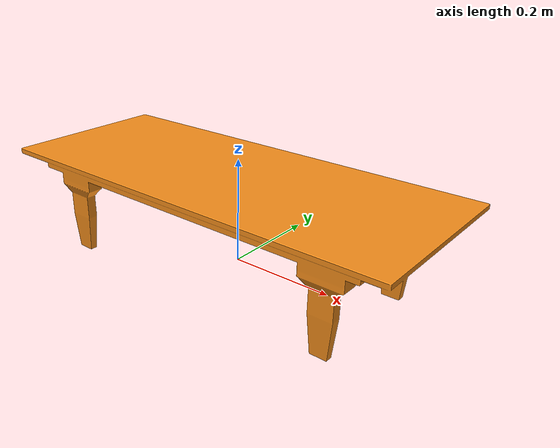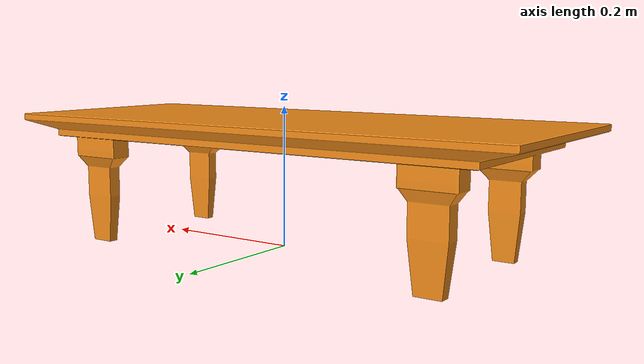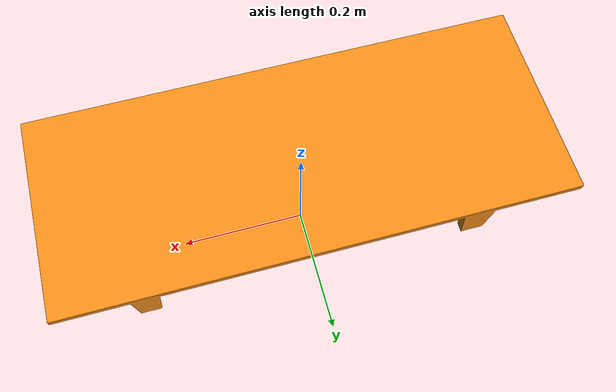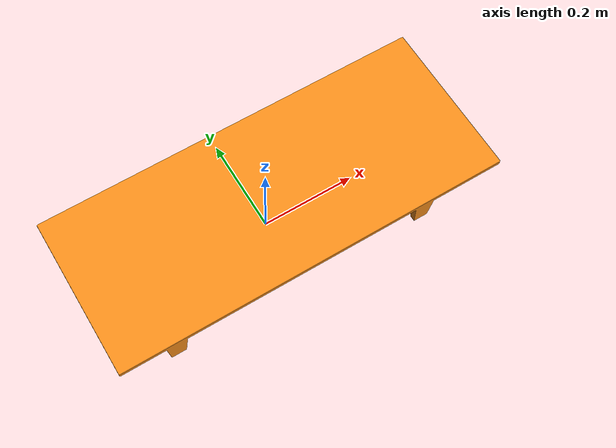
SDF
<?xml version="1.0"?>
<!-- Conveyor belt -->
<!-- A SDF model of a "conveyor belt" for the 'source' / 'target' simulation, -->
<!-- it has been modified to be smaller and thinner than the original table_marble -->
<!-- model, to be closer to the ground and not static. -->
<!-- Based on: https://github.com/osrf/gazebo_models/table_marble -->
<!-- License: Creative Commons Attribution 3.0 Unported -->
<sdf version="1.6">
  <model name="conveyor_belt">
    <static>true</static>
    <pose>0 0 0 0 0 0</pose>
    <link name="link">
      <collision name="collision">
        <geometry>
          <mesh>
            <uri>model:///conveyor_belt/meshes/conveyor_belt.dae</uri>
            <scale>0.05 0.05 0.05</scale>
          </mesh>
        </geometry>
      </collision>
      <visual name="visual">
        <geometry>
          <mesh>
            <uri>model://conveyor_belt/meshes/conveyor_belt.dae</uri>
            <scale>0.05 0.05 0.05</scale>
          </mesh>
        </geometry>
        <material>
          <script>
            <uri>file://media/materials/scripts/gazebo.material</uri>
            <name>Gazebo/Orange</name>
          </script>
        </material>
      </visual>
    </link>
    <!-- Attachment link & joint -->
    <link name="attacher_link">
      <pose relative_to="link">
        0 -0.02 0.35 0 0 0
      </pose>
    </link>
    <joint name="attacher_joint" type="fixed">
      <parent>link</parent>
      <child>attacher_link</child>
      <pose relative_to="attacher_link">
        0 0 0 0 0 0
      </pose>
    </joint>
  </model>
</sdf>
